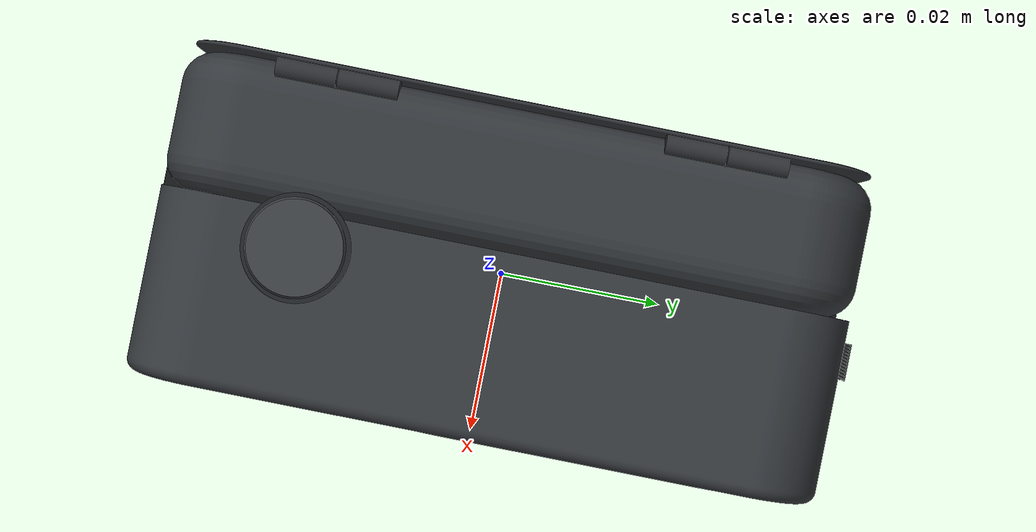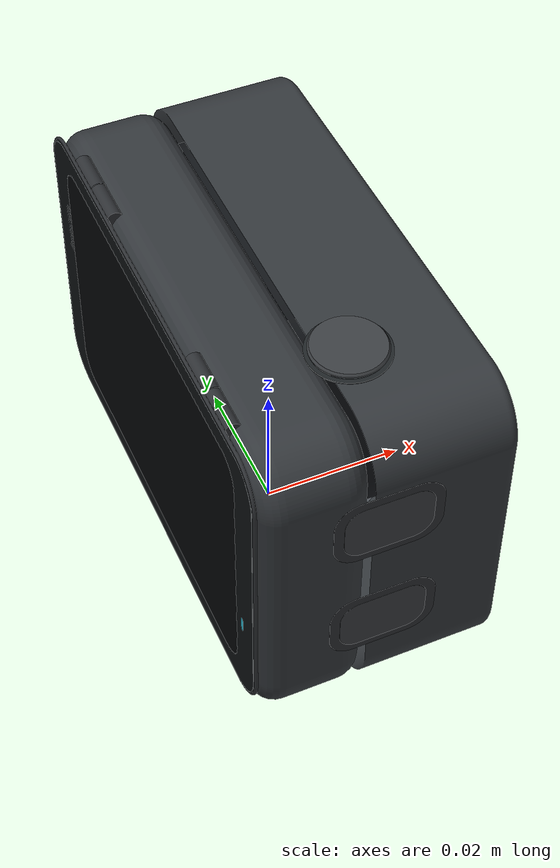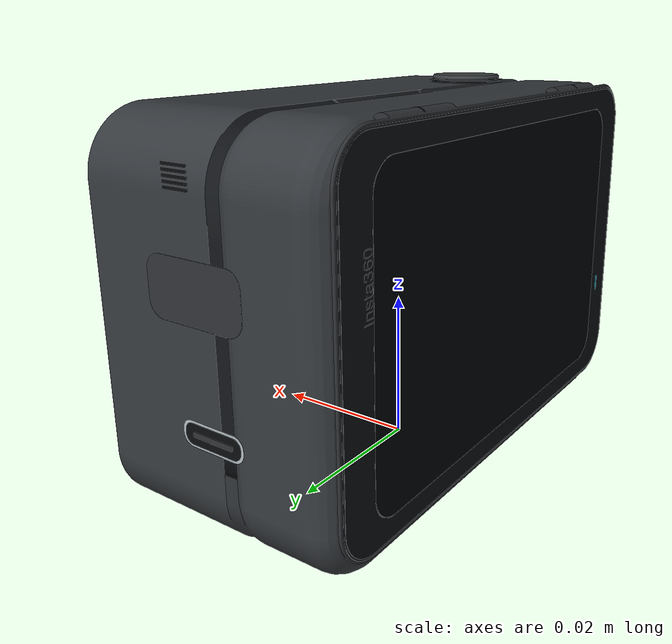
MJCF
<?xml version='1.0' encoding='utf-8'?>
<mujoco model="insta360_go_ultra_action_pod">
  <!--Independent approximate geometry; fixed sites are geometric references, not calibrated optical frames.-->
  <compiler angle="radian" inertiafromgeom="false" strippath="false" />
  <option timestep="0.002" gravity="0 0 -9.81" />
  <asset>
    <mesh name="go_ultra_action_pod_visual_mesh_0" file="../assets/meshes/visual/front_polymer.obj" scale="1 1 1" inertia="shell" />
    <mesh name="go_ultra_action_pod_visual_mesh_1" file="../assets/meshes/visual/gasket.obj" scale="1 1 1" inertia="shell" />
    <mesh name="go_ultra_action_pod_visual_mesh_2" file="../assets/meshes/visual/gold.obj" scale="1 1 1" inertia="shell" />
    <mesh name="go_ultra_action_pod_visual_mesh_3" file="../assets/meshes/visual/housing.obj" scale="1 1 1" inertia="shell" />
    <mesh name="go_ultra_action_pod_visual_mesh_4" file="../assets/meshes/visual/rear_polymer.obj" scale="1 1 1" inertia="shell" />
    <mesh name="go_ultra_action_pod_visual_mesh_5" file="../assets/meshes/visual/screen.obj" scale="1 1 1" inertia="shell" />
    <mesh name="go_ultra_action_pod_visual_mesh_6" file="../assets/meshes/visual/screen_border.obj" scale="1 1 1" inertia="shell" />
    <mesh name="go_ultra_action_pod_visual_mesh_7" file="../assets/meshes/visual/silver.obj" scale="1 1 1" inertia="shell" />
    <mesh name="go_ultra_action_pod_visual_mesh_8" file="../assets/meshes/visual/slot.obj" scale="1 1 1" inertia="shell" />
    <mesh name="go_ultra_action_pod_visual_mesh_9" file="../assets/meshes/visual/status.obj" scale="1 1 1" inertia="shell" />
    <mesh name="go_ultra_action_pod_visual_mesh_10" file="../assets/meshes/visual/subtle_print.obj" scale="1 1 1" inertia="shell" />
    <mesh name="go_ultra_action_pod_visual_mesh_11" file="../assets/meshes/visual/tray.obj" scale="1 1 1" inertia="shell" />
    <mesh name="go_ultra_action_pod_collision_mesh_0" file="../assets/meshes/collision/body.stl" scale="1 1 1" inertia="convex" />
  </asset>
  <worldbody>
    <body name="go_ultra_action_pod_link">
      <inertial pos="0 0 0.0244" mass="0.1085" diaginertia="6.63441333333e-05 3.15283142708e-05 5.48080742708e-05" quat="1 0 0 0" />
      <geom name="go_ultra_action_pod_visual_0" type="mesh" mesh="go_ultra_action_pod_visual_mesh_0" pos="0 0 0" quat="1 0 0 0" density="0" group="2" contype="0" conaffinity="0" rgba="0.23 0.242 0.255 1" />
      <geom name="go_ultra_action_pod_visual_1" type="mesh" mesh="go_ultra_action_pod_visual_mesh_1" pos="0 0 0" quat="1 0 0 0" density="0" group="2" contype="0" conaffinity="0" rgba="0.12 0.135 0.145 1" />
      <geom name="go_ultra_action_pod_visual_2" type="mesh" mesh="go_ultra_action_pod_visual_mesh_2" pos="0 0 0" quat="1 0 0 0" density="0" group="2" contype="0" conaffinity="0" rgba="0.72 0.51 0.17 1" />
      <geom name="go_ultra_action_pod_visual_3" type="mesh" mesh="go_ultra_action_pod_visual_mesh_3" pos="0 0 0" quat="1 0 0 0" density="0" group="2" contype="0" conaffinity="0" rgba="0.2 0.215 0.23 1" />
      <geom name="go_ultra_action_pod_visual_4" type="mesh" mesh="go_ultra_action_pod_visual_mesh_4" pos="0 0 0" quat="1 0 0 0" density="0" group="2" contype="0" conaffinity="0" rgba="0.175 0.185 0.198 1" />
      <geom name="go_ultra_action_pod_visual_5" type="mesh" mesh="go_ultra_action_pod_visual_mesh_5" pos="0 0 0" quat="1 0 0 0" density="0" group="2" contype="0" conaffinity="0" rgba="0.019 0.027 0.035 1" />
      <geom name="go_ultra_action_pod_visual_6" type="mesh" mesh="go_ultra_action_pod_visual_mesh_6" pos="0 0 0" quat="1 0 0 0" density="0" group="2" contype="0" conaffinity="0" rgba="0.065 0.075 0.086 1" />
      <geom name="go_ultra_action_pod_visual_7" type="mesh" mesh="go_ultra_action_pod_visual_mesh_7" pos="0 0 0" quat="1 0 0 0" density="0" group="2" contype="0" conaffinity="0" rgba="0.67 0.71 0.735 1" />
      <geom name="go_ultra_action_pod_visual_8" type="mesh" mesh="go_ultra_action_pod_visual_mesh_8" pos="0 0 0" quat="1 0 0 0" density="0" group="2" contype="0" conaffinity="0" rgba="0.025 0.033 0.039 1" />
      <geom name="go_ultra_action_pod_visual_9" type="mesh" mesh="go_ultra_action_pod_visual_mesh_9" pos="0 0 0" quat="1 0 0 0" density="0" group="2" contype="0" conaffinity="0" rgba="0.2 0.79 0.89 1" />
      <geom name="go_ultra_action_pod_visual_10" type="mesh" mesh="go_ultra_action_pod_visual_mesh_10" pos="0 0 0" quat="1 0 0 0" density="0" group="2" contype="0" conaffinity="0" rgba="0.3 0.32 0.34 1" />
      <geom name="go_ultra_action_pod_visual_11" type="mesh" mesh="go_ultra_action_pod_visual_mesh_11" pos="0 0 0" quat="1 0 0 0" density="0" group="2" contype="0" conaffinity="0" rgba="0.065 0.075 0.088 1" />
      <geom name="go_ultra_action_pod_collision_0" type="mesh" mesh="go_ultra_action_pod_collision_mesh_0" pos="0 0 0" quat="1 0 0 0" density="0" group="3" contype="1" conaffinity="1" rgba="0 0 0 0" />
      <site name="go_ultra_action_pod_mount" pos="0 0 0" quat="1 0 0 0" type="sphere" size="0.001" group="4" rgba="0 0 0 0" />
    </body>
  </worldbody>
</mujoco>
